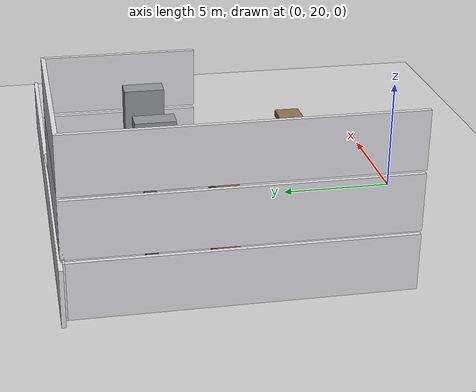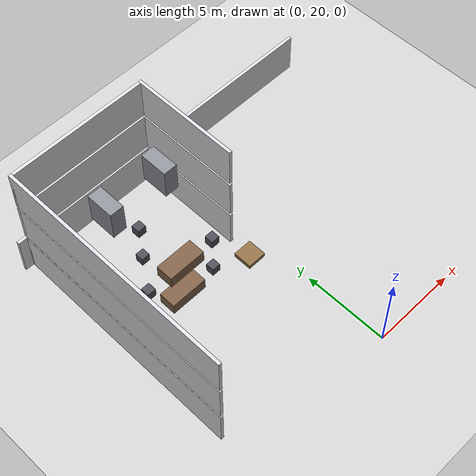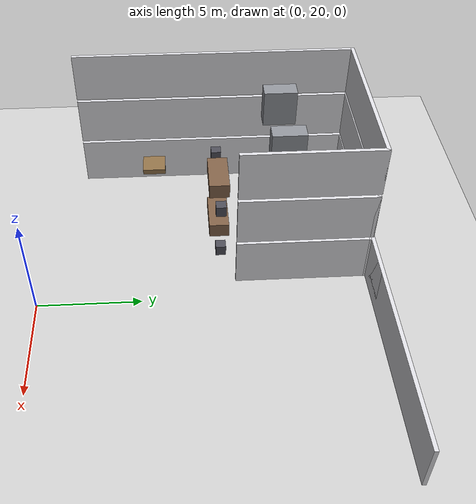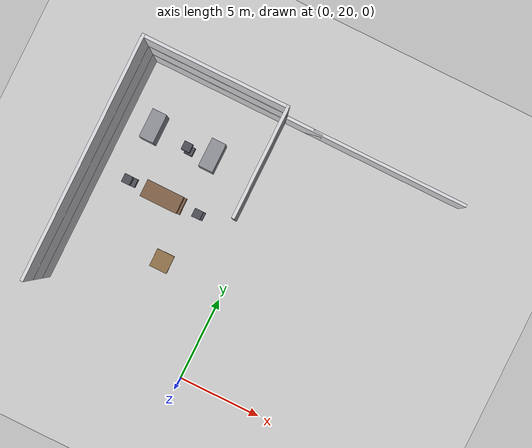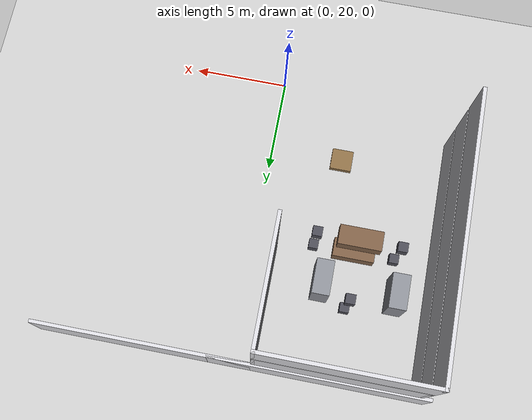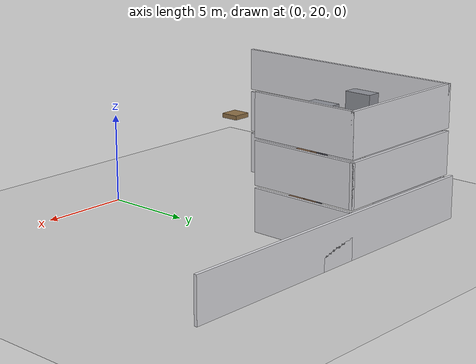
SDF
<sdf version="1.7">
 <world name="generated_world">
  <include><uri>model://sun</uri></include>
  <include><uri>model://ground_plane</uri></include>
  <model name="generated_building">
   <static>true</static>
   <link name="exterior_north_floor_0">
    <pose>0.0000 35.9100 1.2250 0.0000 0.0000 0.0000</pose>
    <collision name="exterior_north_floor_0_collision">
     <geometry><box><size>20.0000 0.1800 2.4500</size></box></geometry>
    </collision>
    <visual name="exterior_north_floor_0_visual">
     <geometry><box><size>20.0000 0.1800 2.4500</size></box></geometry>
     <material><ambient>0.86 0.86 0.88 1</ambient><diffuse>0.86 0.86 0.88 1</diffuse></material>
    </visual>
    <gravity>false</gravity>
   </link>
   <link name="north_end_wall_floor_0">
    <pose>0.0000 35.9100 1.2250 0.0000 0.0000 0.0000</pose>
    <collision name="north_end_wall_floor_0_collision">
     <geometry><box><size>2.2000 0.1800 2.4500</size></box></geometry>
    </collision>
    <visual name="north_end_wall_floor_0_visual">
     <geometry><box><size>2.2000 0.1800 2.4500</size></box></geometry>
     <material><ambient>0.86 0.86 0.88 1</ambient><diffuse>0.86 0.86 0.88 1</diffuse></material>
    </visual>
    <gravity>false</gravity>
   </link>
   <link name="floor_0_room_2_corridor_wall_upper">
    <pose>-1.1900 32.7025 1.2250 0.0000 0.0000 0.0000</pose>
    <collision name="floor_0_room_2_corridor_wall_upper_collision">
     <geometry><box><size>0.1800 6.4150 2.4500</size></box></geometry>
    </collision>
    <visual name="floor_0_room_2_corridor_wall_upper_visual">
     <geometry><box><size>0.1800 6.4150 2.4500</size></box></geometry>
     <material><ambient>0.86 0.86 0.88 1</ambient><diffuse>0.86 0.86 0.88 1</diffuse></material>
    </visual>
    <gravity>false</gravity>
   </link>
   <link name="floor_0_room_2_west_wall">
    <pose>-9.4100 28.8950 1.2250 0.0000 0.0000 0.0000</pose>
    <collision name="floor_0_room_2_west_wall_collision">
     <geometry><box><size>0.1800 14.0300 2.4500</size></box></geometry>
    </collision>
    <visual name="floor_0_room_2_west_wall_visual">
     <geometry><box><size>0.1800 14.0300 2.4500</size></box></geometry>
     <material><ambient>0.86 0.86 0.88 1</ambient><diffuse>0.86 0.86 0.88 1</diffuse></material>
    </visual>
    <gravity>false</gravity>
   </link>
   <link name="floor_0_room_2_north_wall">
    <pose>-5.3000 35.8200 1.2250 0.0000 0.0000 0.0000</pose>
    <collision name="floor_0_room_2_north_wall_collision">
     <geometry><box><size>8.4000 0.1800 2.4500</size></box></geometry>
    </collision>
    <visual name="floor_0_room_2_north_wall_visual">
     <geometry><box><size>8.4000 0.1800 2.4500</size></box></geometry>
     <material><ambient>0.86 0.86 0.88 1</ambient><diffuse>0.86 0.86 0.88 1</diffuse></material>
    </visual>
    <gravity>false</gravity>
   </link>
   <link name="floor_0_room_2_table">
    <pose>-5.3000 28.8950 0.4500 0.0000 0.0000 0.0000</pose>
    <collision name="floor_0_room_2_table_collision">
     <geometry><box><size>2.2000 1.0000 0.7500</size></box></geometry>
    </collision>
    <visual name="floor_0_room_2_table_visual">
     <geometry><box><size>2.2000 1.0000 0.7500</size></box></geometry>
     <material><ambient>0.50 0.38 0.28 1</ambient><diffuse>0.50 0.38 0.28 1</diffuse></material>
    </visual>
    <gravity>false</gravity>
   </link>
   <link name="floor_0_room_2_chair_north">
    <pose>-5.3000 31.9525 0.2800 0.0000 0.0000 0.0000</pose>
    <collision name="floor_0_room_2_chair_north_collision">
     <geometry><box><size>0.5000 0.5000 0.5500</size></box></geometry>
    </collision>
    <visual name="floor_0_room_2_chair_north_visual">
     <geometry><box><size>0.5000 0.5000 0.5500</size></box></geometry>
     <material><ambient>0.30 0.30 0.34 1</ambient><diffuse>0.30 0.30 0.34 1</diffuse></material>
    </visual>
    <gravity>false</gravity>
   </link>
   <link name="floor_0_room_2_chair_west">
    <pose>-7.4500 28.8950 0.2800 0.0000 0.0000 1.5700</pose>
    <collision name="floor_0_room_2_chair_west_collision">
     <geometry><box><size>0.5000 0.5000 0.5500</size></box></geometry>
    </collision>
    <visual name="floor_0_room_2_chair_west_visual">
     <geometry><box><size>0.5000 0.5000 0.5500</size></box></geometry>
     <material><ambient>0.30 0.30 0.34 1</ambient><diffuse>0.30 0.30 0.34 1</diffuse></material>
    </visual>
    <gravity>false</gravity>
   </link>
   <link name="floor_0_room_2_chair_east">
    <pose>-3.1500 28.8950 0.2800 0.0000 0.0000 1.5700</pose>
    <collision name="floor_0_room_2_chair_east_collision">
     <geometry><box><size>0.5000 0.5000 0.5500</size></box></geometry>
    </collision>
    <visual name="floor_0_room_2_chair_east_visual">
     <geometry><box><size>0.5000 0.5000 0.5500</size></box></geometry>
     <material><ambient>0.30 0.30 0.34 1</ambient><diffuse>0.30 0.30 0.34 1</diffuse></material>
    </visual>
    <gravity>false</gravity>
   </link>
   <link name="floor_1_room_2_corridor_wall_upper">
    <pose>-1.1900 32.7025 3.8250 0.0000 0.0000 0.0000</pose>
    <collision name="floor_1_room_2_corridor_wall_upper_collision">
     <geometry><box><size>0.1800 6.4150 2.4500</size></box></geometry>
    </collision>
    <visual name="floor_1_room_2_corridor_wall_upper_visual">
     <geometry><box><size>0.1800 6.4150 2.4500</size></box></geometry>
     <material><ambient>0.86 0.86 0.88 1</ambient><diffuse>0.86 0.86 0.88 1</diffuse></material>
    </visual>
    <gravity>false</gravity>
   </link>
   <link name="floor_1_room_2_west_wall">
    <pose>-9.4100 28.8950 3.8250 0.0000 0.0000 0.0000</pose>
    <collision name="floor_1_room_2_west_wall_collision">
     <geometry><box><size>0.1800 14.0300 2.4500</size></box></geometry>
    </collision>
    <visual name="floor_1_room_2_west_wall_visual">
     <geometry><box><size>0.1800 14.0300 2.4500</size></box></geometry>
     <material><ambient>0.86 0.86 0.88 1</ambient><diffuse>0.86 0.86 0.88 1</diffuse></material>
    </visual>
    <gravity>false</gravity>
   </link>
   <link name="floor_1_room_2_north_wall">
    <pose>-5.3000 35.8200 3.8250 0.0000 0.0000 0.0000</pose>
    <collision name="floor_1_room_2_north_wall_collision">
     <geometry><box><size>8.4000 0.1800 2.4500</size></box></geometry>
    </collision>
    <visual name="floor_1_room_2_north_wall_visual">
     <geometry><box><size>8.4000 0.1800 2.4500</size></box></geometry>
     <material><ambient>0.86 0.86 0.88 1</ambient><diffuse>0.86 0.86 0.88 1</diffuse></material>
    </visual>
    <gravity>false</gravity>
   </link>
   <link name="floor_1_room_2_table">
    <pose>-5.3000 28.8950 3.0500 0.0000 0.0000 0.0000</pose>
    <collision name="floor_1_room_2_table_collision">
     <geometry><box><size>2.2000 1.0000 0.7500</size></box></geometry>
    </collision>
    <visual name="floor_1_room_2_table_visual">
     <geometry><box><size>2.2000 1.0000 0.7500</size></box></geometry>
     <material><ambient>0.50 0.38 0.28 1</ambient><diffuse>0.50 0.38 0.28 1</diffuse></material>
    </visual>
    <gravity>false</gravity>
   </link>
   <link name="floor_1_room_2_chair_north">
    <pose>-5.3000 31.9525 2.8800 0.0000 0.0000 0.0000</pose>
    <collision name="floor_1_room_2_chair_north_collision">
     <geometry><box><size>0.5000 0.5000 0.5500</size></box></geometry>
    </collision>
    <visual name="floor_1_room_2_chair_north_visual">
     <geometry><box><size>0.5000 0.5000 0.5500</size></box></geometry>
     <material><ambient>0.30 0.30 0.34 1</ambient><diffuse>0.30 0.30 0.34 1</diffuse></material>
    </visual>
    <gravity>false</gravity>
   </link>
   <link name="floor_1_room_2_chair_west">
    <pose>-7.4500 28.8950 2.8800 0.0000 0.0000 1.5700</pose>
    <collision name="floor_1_room_2_chair_west_collision">
     <geometry><box><size>0.5000 0.5000 0.5500</size></box></geometry>
    </collision>
    <visual name="floor_1_room_2_chair_west_visual">
     <geometry><box><size>0.5000 0.5000 0.5500</size></box></geometry>
     <material><ambient>0.30 0.30 0.34 1</ambient><diffuse>0.30 0.30 0.34 1</diffuse></material>
    </visual>
    <gravity>false</gravity>
   </link>
   <link name="floor_1_room_2_chair_east">
    <pose>-3.1500 28.8950 2.8800 0.0000 0.0000 1.5700</pose>
    <collision name="floor_1_room_2_chair_east_collision">
     <geometry><box><size>0.5000 0.5000 0.5500</size></box></geometry>
    </collision>
    <visual name="floor_1_room_2_chair_east_visual">
     <geometry><box><size>0.5000 0.5000 0.5500</size></box></geometry>
     <material><ambient>0.30 0.30 0.34 1</ambient><diffuse>0.30 0.30 0.34 1</diffuse></material>
    </visual>
    <gravity>false</gravity>
   </link>
   <link name="floor_2_room_2_corridor_wall_upper">
    <pose>-1.1900 32.7025 6.4250 0.0000 0.0000 0.0000</pose>
    <collision name="floor_2_room_2_corridor_wall_upper_collision">
     <geometry><box><size>0.1800 6.4150 2.4500</size></box></geometry>
    </collision>
    <visual name="floor_2_room_2_corridor_wall_upper_visual">
     <geometry><box><size>0.1800 6.4150 2.4500</size></box></geometry>
     <material><ambient>0.86 0.86 0.88 1</ambient><diffuse>0.86 0.86 0.88 1</diffuse></material>
    </visual>
    <gravity>false</gravity>
   </link>
   <link name="floor_2_room_2_west_wall">
    <pose>-9.4100 28.8950 6.4250 0.0000 0.0000 0.0000</pose>
    <collision name="floor_2_room_2_west_wall_collision">
     <geometry><box><size>0.1800 14.0300 2.4500</size></box></geometry>
    </collision>
    <visual name="floor_2_room_2_west_wall_visual">
     <geometry><box><size>0.1800 14.0300 2.4500</size></box></geometry>
     <material><ambient>0.86 0.86 0.88 1</ambient><diffuse>0.86 0.86 0.88 1</diffuse></material>
    </visual>
    <gravity>false</gravity>
   </link>
   <link name="floor_2_room_2_north_wall">
    <pose>-5.3000 35.8200 6.4250 0.0000 0.0000 0.0000</pose>
    <collision name="floor_2_room_2_north_wall_collision">
     <geometry><box><size>8.4000 0.1800 2.4500</size></box></geometry>
    </collision>
    <visual name="floor_2_room_2_north_wall_visual">
     <geometry><box><size>8.4000 0.1800 2.4500</size></box></geometry>
     <material><ambient>0.86 0.86 0.88 1</ambient><diffuse>0.86 0.86 0.88 1</diffuse></material>
    </visual>
    <gravity>false</gravity>
   </link>
   <link name="floor_2_room_2_rack_a">
    <pose>-7.0000 31.9525 6.1000 0.0000 0.0000 0.0000</pose>
    <collision name="floor_2_room_2_rack_a_collision">
     <geometry><box><size>0.8000 1.6000 1.8000</size></box></geometry>
    </collision>
    <visual name="floor_2_room_2_rack_a_visual">
     <geometry><box><size>0.8000 1.6000 1.8000</size></box></geometry>
     <material><ambient>0.56 0.57 0.60 1</ambient><diffuse>0.56 0.57 0.60 1</diffuse></material>
    </visual>
    <gravity>false</gravity>
   </link>
   <link name="floor_2_room_2_rack_b">
    <pose>-3.6000 31.9525 6.1000 0.0000 0.0000 0.0000</pose>
    <collision name="floor_2_room_2_rack_b_collision">
     <geometry><box><size>0.8000 1.6000 1.8000</size></box></geometry>
    </collision>
    <visual name="floor_2_room_2_rack_b_visual">
     <geometry><box><size>0.8000 1.6000 1.8000</size></box></geometry>
     <material><ambient>0.56 0.57 0.60 1</ambient><diffuse>0.56 0.57 0.60 1</diffuse></material>
    </visual>
    <gravity>false</gravity>
   </link>
   <link name="floor_2_room_2_pallet">
    <pose>-3.6000 25.8375 5.3200 0.0000 0.0000 0.0000</pose>
    <collision name="floor_2_room_2_pallet_collision">
     <geometry><box><size>1.0000 1.0000 0.2400</size></box></geometry>
    </collision>
    <visual name="floor_2_room_2_pallet_visual">
     <geometry><box><size>1.0000 1.0000 0.2400</size></box></geometry>
     <material><ambient>0.56 0.44 0.28 1</ambient><diffuse>0.56 0.44 0.28 1</diffuse></material>
    </visual>
    <gravity>false</gravity>
   </link>
  </model>
 </world>
</sdf>
